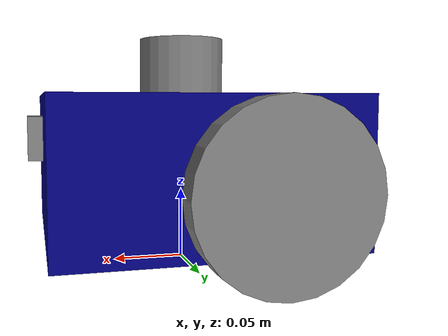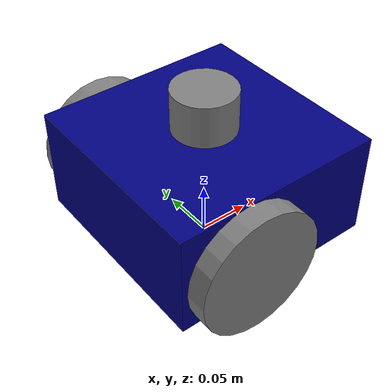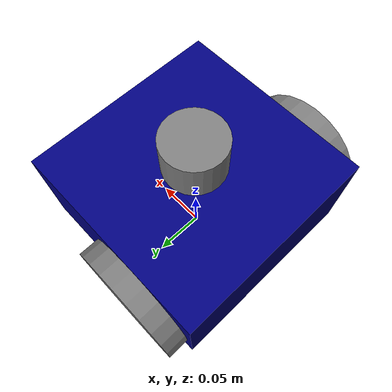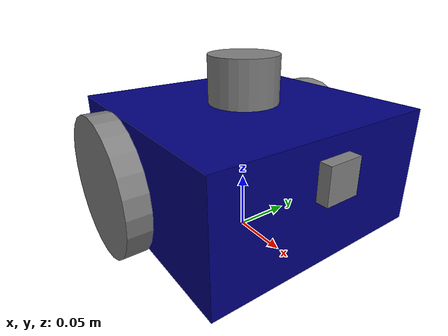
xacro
<?xml version="1.0"?>
<robot name="my_robot" xmlns:xacro="http://www.ros.org/wiki/xacro">

    <!-- Material Tags -->

    <material name="blue">
        <color rgba="0 0 0.5 1" />
    </material>

    <material name="grey">
        <color rgba="0.5 0.5 0.5 1" />
    </material>

    <!-- Inertial tags for shapes-->

    <xacro:macro name="box_inertia" params="m l w h xyz rpy">
        <inertial>
            <origin xyz="${xyz}" rpy="${rpy}" />
            <mass value="${m}" />
            <inertia ixx="${(m/12) * (h*h + l*l)}" ixy="0" ixz="0"
                     iyy="${(m/12) * (w*w + l*l)}" iyz="0"
                     izz="${(m/12) * (w*w + h*h)}" />
        </inertial>
    </xacro:macro>

    <xacro:macro name="cylinder_inertia" params="m r h xyz rpy">
        <inertial>
            <origin xyz="${xyz}" rpy="${rpy}" />
            <mass value="${m}" />
            <inertia ixx="${(m/12) * (3*r*r + h*h)}" ixy="0" ixz="0"
                     iyy="${(m/12) * (3*r*r + h*h)}" iyz="0"
                     izz="${(m/2) * (r*r)}" />
        </inertial>
    </xacro:macro>

    <xacro:macro name="sphere_inertia" params="m r xyz rpy">
        <inertial>
            <origin xyz="${xyz}" rpy="${rpy}" />
            <mass value="${m}" />
            <inertia ixx="${(2/5) * m * r * r}" ixy="0" ixz="0"
                     iyy="${(2/5) * m * r * r}" iyz="0"
                     izz="${(2/5) * m * r * r}" />
        </inertial>
    </xacro:macro>

    <!--LINKS-->

    <link name="base_footprint" />

    <link name="base_link">
        <visual>
            <geometry>
                <box size="0.2 0.2 0.1" />
            </geometry>
            <origin xyz="0 0 0.05" rpy="0 0 0" />
            <material name="blue" />
        </visual>
        <collision>
            <geometry>
                <box size="0.2 0.2 0.1" />
            </geometry>
            <origin xyz="0 0 0.05" rpy="0 0 0" />

        </collision>
        <xacro:box_inertia m="2.5" l="0.2" w="0.2" h="0.1"
                           xyz="0 0 0.05" rpy="0 0 0" />

    </link>

    <link name="right_wheel_link">
        <visual>
            <geometry>
                <cylinder radius="0.06" length="0.02" />
            </geometry>
            <origin xyz="0 0 0" rpy="1.57 0 0" />
            <material name="grey" />
        </visual>
        <collision>
            <geometry>
                <cylinder radius="0.06" length="0.02" />
            </geometry>
            <origin xyz="0 0 0" rpy="1.57 0 0" />

        </collision>
        <xacro:cylinder_inertia m="0.5" r="0.06" h="0.02"
                                    xyz="0 0 0.035" rpy="1.57 0 0" />
    </link>

    <link name="left_wheel_link">
        <visual>
            <geometry>
                <cylinder radius="0.06" length="0.02" />
            </geometry>
            <origin xyz="0 0 0" rpy="1.57 0 0" />
            <material name="grey" />
        </visual>
        <collision>
            <geometry>
                <cylinder radius="0.06" length="0.02" />
            </geometry>
            <origin xyz="0 0 0" rpy="1.57 0 0" />

        </collision>
        <xacro:cylinder_inertia m="0.5" r="0.06" h="0.02"
                                    xyz="0 0 0.035" rpy="1.57 0 0" />
    </link>

    <link name="caster_wheel_link">
        <visual>
            <geometry>
                <sphere radius="0.021" />
            </geometry>
            <origin xyz="0 0 0" rpy="0 0 0" />
            <material name="grey" />
        </visual>
        <collision>
            <geometry>
                <sphere radius="0.021" />
            </geometry>
            <origin xyz="0 0 0" rpy="0 0 0" />

        </collision>
        <xacro:sphere_inertia m="0.25" r="0.021"
                              xyz="0 0 0" rpy="0 0 0" />
    </link>

    <link name="camera_link">
        <visual>
            <geometry>
               <box size="0.01 0.03 0.03"/>
            </geometry>
            <material name="grey"/>
        </visual>
        <collision>
            <geometry>
               <box size="0.01 0.03 0.03"/>
            </geometry>
        </collision>

        <xacro:box_inertia m="0.1" l="0.01" w="0.03" h="0.03"
                           xyz="0 0 0" rpy="0 0 0" />

    </link>

    <link name="lidar_link">
        <visual>
            <geometry>
                <cylinder radius="0.03" length="0.04"/>
            </geometry>
            <material name="grey"/>
        </visual>
        <collision>
            <geometry>
                <cylinder radius="0.03" length="0.04"/>
            </geometry>
        </collision>

        <xacro:cylinder_inertia m="0.2" r="0.03" h="0.04"
                                    xyz="0 0 0" rpy="0 0 0" />

    </link>

    <!--Joints-->

    <joint name="base_joint" type="fixed">
        <parent link="base_footprint" />
        <child link="base_link" />
        <origin xyz="0 0 0.02" rpy="0 0 0"/>
    </joint>

    <joint name="base_right_wheel_joint" type="continuous">
        <parent link="base_link" />
        <child link="right_wheel_link" />
        <origin xyz="-0.035 -0.11 0.04" rpy="0 0 0" />
        <axis xyz="0 1 0" />
    </joint>

    <joint name="base_left_wheel_joint" type="continuous">
        <parent link="base_link" />
        <child link="left_wheel_link" />
        <origin xyz="-0.035 0.11 0.04" rpy="0 0 0" />
        <axis xyz="0 1 0" />
    </joint>

    <joint name="base_caster_wheel_joint" type="fixed">
        <parent link="base_link" />
        <child link="caster_wheel_link" />
        <origin xyz="0.061 0 0.001" rpy="0 0 0" />
    </joint>

    <joint name="base_camera_joint" type="fixed">
        <parent link="base_link" />
        <child link="camera_link" />
        <origin xyz="0.105 0 0.07" rpy="0 0 0" />
    </joint>

    <joint name="base_lidar_joint" type="fixed">
        <parent link="base_link" />
        <child link="lidar_link" />
        <origin xyz="0 0 0.12" rpy="0 0 0" />
    </joint>

    <!--gazebo tags-->

    <gazebo reference="caster_wheel_link">
        <mu1 value="0.1" />
        <mu2 value="0.1" />
    </gazebo>

    <!--plugins-->

    <gazebo>
        <plugin
            filename="gz-sim-diff-drive-system"
            name="gz::sim::systems::DiffDrive">
            <left_joint>base_left_wheel_joint</left_joint>
            <right_joint>base_right_wheel_joint</right_joint>
            <frame_id>odom</frame_id>
            <child_frame_id>base_footprint</child_frame_id>
            <wheel_separation>0.22</wheel_separation>
            <wheel_radius>0.06</wheel_radius>
        </plugin>
    </gazebo>

    <gazebo>
        <plugin
            filename="gz-sim-joint-state-publisher-system"
            name="gz::sim::systems::JointStatePublisher">
            <joint_name>base_left_wheel_joint</joint_name>
            <joint_name>base_right_wheel_joint</joint_name>
        </plugin>
    </gazebo>

    <gazebo>
        <plugin
            filename="ignition-gazebo-sensors-system"
            name="ignition::gazebo::systems::Sensors">
            <render_engine>ogre2</render_engine>
        </plugin>
    </gazebo>

    <!--gazebo sensors-->

    <!--LiDAR-->

    <gazebo reference="lidar_link">
        <sensor name="lidar_link" type="gpu_ray">

            <visualize>true</visualize>
            <always_on>true</always_on>
            <update_rate>1</update_rate>
            <gazebo_frame_id>lidar_link</gazebo_frame_id>
            <ray>
                <scan>
                    <horizontal>
                        <samples>360</samples>
                        <resolution>1</resolution>
                        <min_angle>0</min_angle>
                        <max_angle>6.28</max_angle>
                    </horizontal>
                </scan>
                <range>
                    <min>0.3</min>
                    <max>12.0</max>
                    <resolution>0.01</resolution>
                </range>
                <noise>
                    <type>gaussian</type>
                    <mean>0.0</mean>
                    <stddev>0.01</stddev>
                </noise>
            </ray>
            <topic>/scan</topic>
        </sensor>
    </gazebo>

    <!--camera-->

    <gazebo reference="camera_link">
        <sensor name="camera" type="camera">
            <camera>
                <horizontal_fov>1.3962634</horizontal_fov>
                <image>
                    <width>640</width>
                    <height>480</height>
                    <format>R8G8B8</format>
                </image>
                <clip>
                    <near>0.1</near>
                    <far>15</far>
                </clip>
                <noise>
                    <type>gaussian</type>
                    <mean>0.0</mean>
                    <stddev>0.007</stddev>
                </noise>
                <optical_frame_id>camera_link</optical_frame_id>
                <camera_info_topic>camera/camera_info</camera_info_topic>
            </camera>
            <always_on>1</always_on>
            <update_rate>20</update_rate>
            <visualize>true</visualize>
            <topic>camera/image_raw</topic>
        </sensor>
    </gazebo>

</robot>
